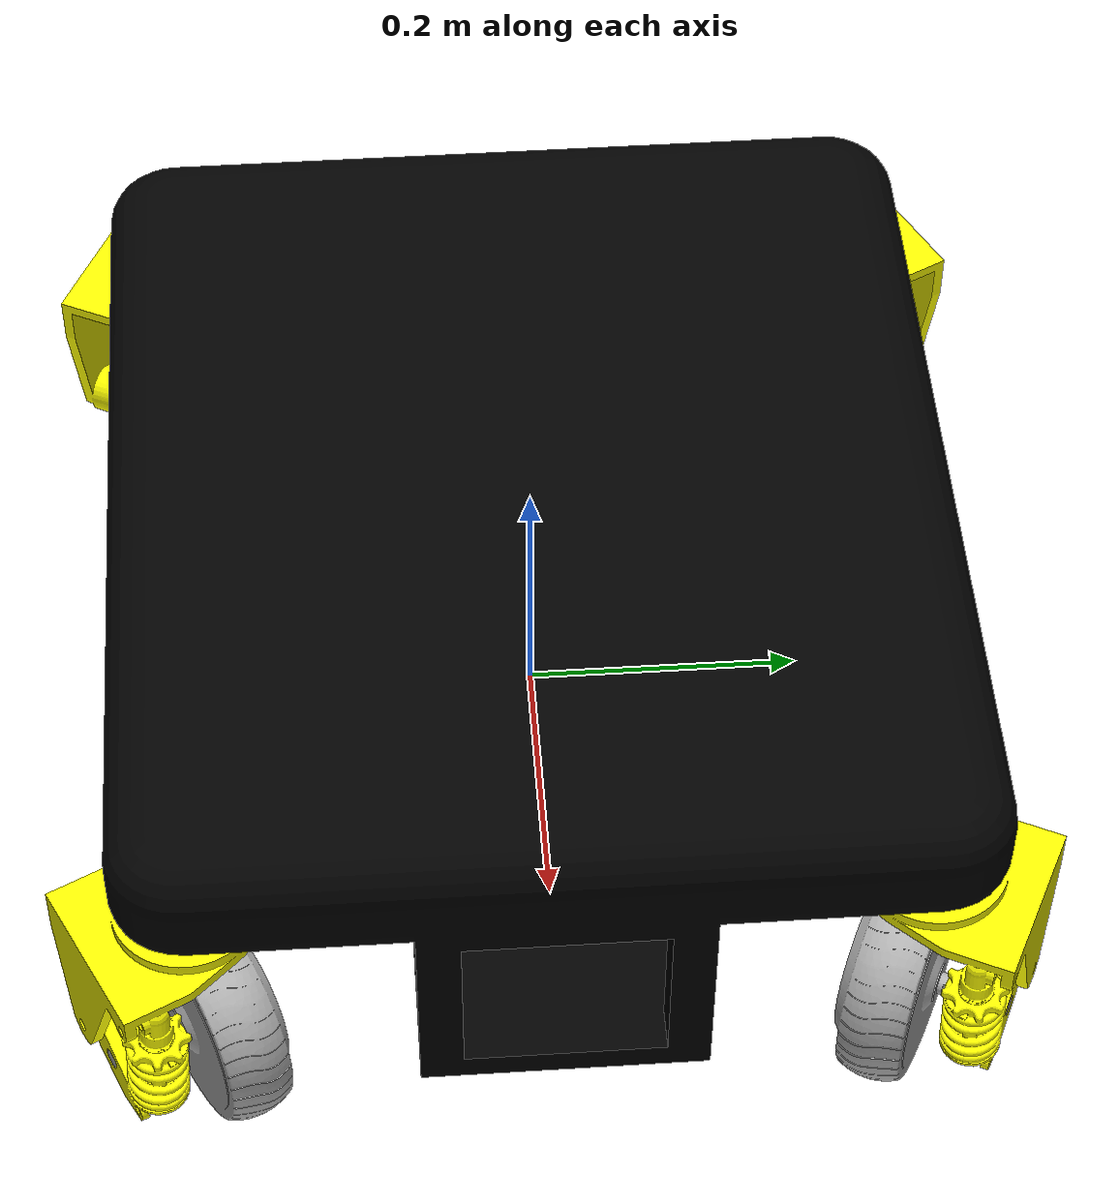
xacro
<?xml version="1.0"?>
<robot xmlns:xacro="http://www.ros.org/wiki/xacro"  name="robot">

    <xacro:include filename="robot_core.xacro"/>
    <xacro:include filename="materials.xacro"/>
    <xacro:include filename="robot_control.xacro" />

</robot>

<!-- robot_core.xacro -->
<robot xmlns:xacro="http://www.ros.org/wiki/xacro" >

<link name="base_link">
</link>
<!-- BASE_FOOTPRINT LINK -->

<joint name="base_footprint_joint" type="fixed">
    <parent link="base_link"/>
    <child link="base_footprint"/>
    <origin xyz="0 0 0" rpy="0 0 0"/>
</joint>

<link name="base_footprint">
</link>

<joint name="chassis_joint" type="fixed">
  <parent link="base_link"/>
  <child link="chassis"/>
  <origin xyz="0 0 0" rpy="0 0 0"/>
  <axis xyz="0 0 0"/>
</joint>

<!-- Base_link -->

<link name="chassis">
  <inertial>
    <origin xyz="5.936022825079781e-17 -5.936022825079781e-17 0.12409798810084059" rpy="0 0 0"/>
    <mass value="615.8064436547418"/>
    <inertia ixx="19.345247" iyy="22.687421" izz="36.434998" ixy="0.0" iyz="-0.0" ixz="0.0"/>
  </inertial>
  <visual>
    <origin xyz="0 0 0" rpy="0 0 0"/>
    <geometry>
      <mesh filename="package://delivery_gazebo/meshes/base_link.stl" scale="0.001 0.001 0.001"/>
    </geometry>
    <material name="black"/>
  </visual>
  <collision>
    <origin xyz="0 0 0" rpy="0 0 0"/>
    <geometry>
      <mesh filename="package://delivery_gazebo/meshes/base_link.stl" scale="0.001 0.001 0.001"/>
    </geometry>
  </collision>
</link>
<gazebo reference="chassis">
        <material>Gazebo/Black</material>
</gazebo>

<link name="rl_steer_link_1">
  <inertial>
    <origin xyz="0.030419226974774838 -0.030216438274936308 -0.06492036915516279" rpy="0 0 0"/>
    <mass value="3.8901314961607207"/>
    <inertia ixx="0.013235" iyy="0.014421" izz="0.00763" ixy="-0.000192" iyz="-0.00214" ixz="0.002047"/>
  </inertial>
  <visual>
    <origin xyz="-0.3 0.25 -0.15" rpy="0 0 0"/>
    <geometry>
      <mesh filename="package://delivery_gazebo/meshes/rl_steer_link_1.stl" scale="0.001 0.001 0.001"/>
    </geometry>
    <material name="yellow"/>
  </visual>
  <collision>
    <origin xyz="-0.3 0.25 -0.15" rpy="0 0 0"/>
    <geometry>
      <mesh filename="package://delivery_gazebo/meshes/rl_steer_link_1.stl" scale="0.001 0.001 0.001"/>
    </geometry>
  </collision>
</link>
<gazebo reference="rl_steer_link_1">
        <material>Gazebo/Yellow</material>
</gazebo>

<link name="rl_wheel_link_1">
  <inertial>
    <origin xyz="-0.03624203704672452 0.07367773310730899 -1.712957634503881e-07" rpy="0 0 0"/>
    <mass value="10.284726688276354"/>
    <inertia ixx="0.02254" iyy="0.030124" izz="0.020115" ixy="-0.004925" iyz="-0.0" ixz="0.0"/>
  </inertial>
  <visual>
    <origin xyz="-0.326756 0.311506 -0.010648" rpy="0 0 0"/>
    <geometry>
      <mesh filename="package://delivery_gazebo/meshes/rl_wheel_link_1.stl" scale="0.001 0.001 0.001"/>
    </geometry>
    <material name="silver"/>
  </visual>
  <collision>
    <origin xyz="-0.326756 0.311506 -0.010648" rpy="0 0 0"/>
    <geometry>
      <mesh filename="package://delivery_gazebo/meshes/rl_wheel_link_1.stl" scale="0.001 0.001 0.001"/>
    </geometry>
  </collision>
</link>
<gazebo reference="rl_wheel_link_1">
        <mu1 value="1000000.0"/>
        <mu2 value="1000000.0"/>
</gazebo>

<link name="rr_steer_link_1">
  <inertial>
    <origin xyz="0.03041922269876568 0.030216437116706962 -0.0649203595957197" rpy="0 0 0"/>
    <mass value="3.8901312683780422"/>
    <inertia ixx="0.013235" iyy="0.014421" izz="0.00763" ixy="0.000192" iyz="0.00214" ixz="0.002047"/>
  </inertial>
  <visual>
    <origin xyz="-0.3 -0.25 -0.15" rpy="0 0 0"/>
    <geometry>
      <mesh filename="package://delivery_gazebo/meshes/rr_steer_link_1.stl" scale="0.001 0.001 0.001"/>
    </geometry>
    <material name="yellow"/>
  </visual>
  <collision>
    <origin xyz="-0.3 -0.25 -0.15" rpy="0 0 0"/>
    <geometry>
      <mesh filename="package://delivery_gazebo/meshes/rr_steer_link_1.stl" scale="0.001 0.001 0.001"/>
    </geometry>
  </collision>
</link>
<gazebo reference="rr_steer_link_1">
        <material>Gazebo/Yellow</material>
</gazebo>

<link name="rr_wheel_link_1">
  <inertial>
    <origin xyz="-0.03624203281156685 -0.07367773430413699 -1.704122321380397e-07" rpy="0 0 0"/>
    <mass value="10.284728563737865"/>
    <inertia ixx="0.02254" iyy="0.030124" izz="0.020115" ixy="0.004925" iyz="0.0" ixz="0.0"/>
  </inertial>
  <visual>
    <origin xyz="-0.326756 -0.311506 -0.010648" rpy="0 0 0"/>
    <geometry>
      <mesh filename="package://delivery_gazebo/meshes/rr_wheel_link_1.stl" scale="0.001 0.001 0.001"/>
    </geometry>
    <material name="silver"/>
  </visual>
  <collision>
    <origin xyz="-0.326756 -0.311506 -0.010648" rpy="0 0 0"/>
    <geometry>
      <mesh filename="package://delivery_gazebo/meshes/rr_wheel_link_1.stl" scale="0.001 0.001 0.001"/>
    </geometry>
  </collision>
</link>
<gazebo reference="rr_wheel_link_1">
        <mu1 value="1000000.0"/>
        <mu2 value="1000000.0"/>
</gazebo>

<link name="fr_steer_link_1">
  <inertial>
    <origin xyz="-0.03041923609172481 0.03021643399173657 -0.06492036146324454" rpy="0 0 0"/>
    <mass value="3.8901341168222516"/>
    <inertia ixx="0.013235" iyy="0.014421" izz="0.00763" ixy="-0.000192" iyz="0.00214" ixz="-0.002047"/>
  </inertial>
  <visual>
    <origin xyz="0.3 -0.25 -0.15" rpy="0 0 0"/>
    <geometry>
      <mesh filename="package://delivery_gazebo/meshes/fr_steer_link_1.stl" scale="0.001 0.001 0.001"/>
    </geometry>
    <material name="yellow"/>
  </visual>
  <collision>
    <origin xyz="0.3 -0.25 -0.15" rpy="0 0 0"/>
    <geometry>
      <mesh filename="package://delivery_gazebo/meshes/fr_steer_link_1.stl" scale="0.001 0.001 0.001"/>
    </geometry>
  </collision>
</link>
<gazebo reference="fr_steer_link_1">
        <material>Gazebo/Yellow</material>
</gazebo>

<link name="fr_wheel_link_1">
  <inertial>
    <origin xyz="0.03624203281156696 -0.07367773430413699 -1.7041223212589662e-07" rpy="0 0 0"/>
    <mass value="10.284728563737865"/>
    <inertia ixx="0.02254" iyy="0.030124" izz="0.020115" ixy="-0.004925" iyz="0.0" ixz="-0.0"/>
  </inertial>
  <visual>
    <origin xyz="0.326756 -0.311506 -0.010648" rpy="0 0 0"/>
    <geometry>
      <mesh filename="package://delivery_gazebo/meshes/fr_wheel_link_1.stl" scale="0.001 0.001 0.001"/>
    </geometry>
    <material name="silver"/>
  </visual>
  <collision>
    <origin xyz="0.326756 -0.311506 -0.010648" rpy="0 0 0"/>
    <geometry>
      <mesh filename="package://delivery_gazebo/meshes/fr_wheel_link_1.stl" scale="0.001 0.001 0.001"/>
    </geometry>
  </collision>
</link>
<gazebo reference="fr_wheel_link_1">
        <mu1 value="1000000.0"/>
        <mu2 value="1000000.0"/>
</gazebo>

<link name="fl_steer_link_1">
  <inertial>
    <origin xyz="-0.03041922277539022 -0.03021643711078409 -0.06492037892152738" rpy="0 0 0"/>
    <mass value="3.890132976551786"/>
    <inertia ixx="0.013235" iyy="0.014421" izz="0.00763" ixy="0.000192" iyz="-0.00214" ixz="-0.002047"/>
  </inertial>
  <visual>
    <origin xyz="0.3 0.25 -0.15" rpy="0 0 0"/>
    <geometry>
      <mesh filename="package://delivery_gazebo/meshes/fl_steer_link_1.stl" scale="0.001 0.001 0.001"/>
    </geometry>
    <material name="yellow"/>
  </visual>
  <collision>
    <origin xyz="0.3 0.25 -0.15" rpy="0 0 0"/>
    <geometry>
      <mesh filename="package://delivery_gazebo/meshes/fl_steer_link_1.stl" scale="0.001 0.001 0.001"/>
    </geometry>
  </collision>
</link>
<gazebo reference="fl_steer_link_1">
        <material>Gazebo/Yellow</material>
</gazebo>

<link name="fl_wheel_link_1">
  <inertial>
    <origin xyz="0.03624203704672452 0.07367773310730899 -1.712957634503881e-07" rpy="0 0 0"/>
    <mass value="10.284726688276354"/>
    <inertia ixx="0.02254" iyy="0.030124" izz="0.020115" ixy="0.004925" iyz="-0.0" ixz="-0.0"/>
  </inertial>
  <visual>
    <origin xyz="0.326756 0.311506 -0.010648" rpy="0 0 0"/>
    <geometry>
      <mesh filename="package://delivery_gazebo/meshes/fl_wheel_link_1.stl" scale="0.001 0.001 0.001"/>
    </geometry>
    <material name="silver"/>
  </visual>
  <collision>
    <origin xyz="0.326756 0.311506 -0.010648" rpy="0 0 0"/>
    <geometry>
      <mesh filename="package://delivery_gazebo/meshes/fl_wheel_link_1.stl" scale="0.001 0.001 0.001"/>
    </geometry>
  </collision>
</link>
<gazebo reference="fl_wheel_link_1">
        <mu1 value="1000000.0"/>
        <mu2 value="1000000.0"/>
</gazebo>

<joint name="steering_rear_left_joint" type="continuous">
  <origin xyz="0.3 -0.25 0.15" rpy="0 0 0"/>
  <parent link="chassis"/>
  <child link="rl_steer_link_1"/>
  <axis xyz="0.0 0.0 -1.0"/>
</joint>

<joint name="wheel_rear_left_joint" type="continuous">
  <origin xyz="0.026756 -0.061506 -0.139352" rpy="0 0 0"/>
  <parent link="rl_steer_link_1"/>
  <child link="rl_wheel_link_1"/>
  <axis xyz="-0.441333 0.897343 -0.0"/>
</joint>

<joint name="steering_rear_right_joint" type="continuous">
  <origin xyz="0.3 0.25 0.15" rpy="0 0 0"/>
  <parent link="chassis"/>
  <child link="rr_steer_link_1"/>
  <axis xyz="0.0 0.0 -1.0"/>
</joint>

<joint name="wheel_rear_right_joint" type="continuous">
  <origin xyz="0.026756 0.061506 -0.139352" rpy="0 0 0"/>
  <parent link="rr_steer_link_1"/>
  <child link="rr_wheel_link_1"/>
  <axis xyz="-0.441333 -0.897343 -0.0"/>
</joint>

<joint name="steering_front_right_joint" type="continuous">
  <origin xyz="-0.3 0.25 0.15" rpy="0 0 0"/>
  <parent link="chassis"/>
  <child link="fr_steer_link_1"/>
  <axis xyz="0.0 0.0 -1.0"/>
</joint>

<joint name="wheel_front_right_joint" type="continuous">
  <origin xyz="-0.026756 0.061506 -0.139352" rpy="0 0 0"/>
  <parent link="fr_steer_link_1"/>
  <child link="fr_wheel_link_1"/>
  <axis xyz="-0.441333 0.897343 -0.0"/>
</joint>

<joint name="steering_front_left_joint" type="continuous">
  <origin xyz="-0.3 -0.25 0.15" rpy="0 0 0"/>
  <parent link="chassis"/>
  <child link="fl_steer_link_1"/>
  <axis xyz="0.0 0.0 -1.0"/>
</joint>

<joint name="wheel_front_left_joint" type="continuous">
  <origin xyz="-0.026756 -0.061506 -0.139352" rpy="0 0 0"/>
  <parent link="fl_steer_link_1"/>
  <child link="fl_wheel_link_1"/>
  <axis xyz="0.441333 0.897343 0.0"/>
</joint>

</robot>

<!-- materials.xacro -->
<robot name="robot" xmlns:xacro="http://www.ros.org/wiki/xacro" >

<material name="silver">
  <color rgba="0.700 0.700 0.700 1.000"/>
</material>
<material name="yellow">
  <color rgba="1.0 1.0 0.0 1.0"/>
</material>
<material name="black">
  <color rgba="0.0 0.0 0.0 1.0"/>
</material>
</robot>
